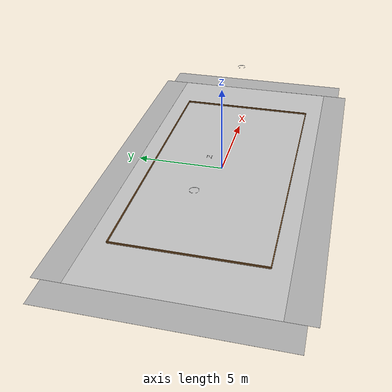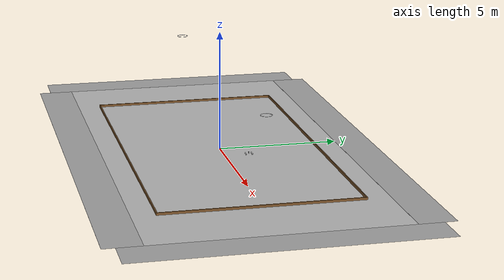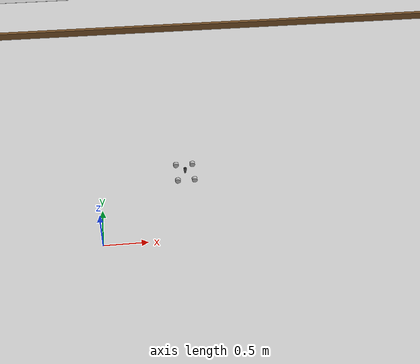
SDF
<sdf version="1.7">
 <world name="default_world">
  <model name="RoboCon25_Field">
   <static>1</static>
   <link name="chassis">
    <pose>0 0 0.01 0 -0 0</pose>
    <collision name="collision">
     <geometry><plane><normal>0 0 1</normal><size>22.5 11.5</size></plane></geometry>
     <surface>
      <friction><ode><mu>100</mu><mu2>50</mu2></ode></friction>
      <bounce><restitution_coefficient>0.75</restitution_coefficient><threshold>0.1</threshold></bounce>
     </surface>
    </collision>
    <visual name="carpet">
     <cast_shadows>0</cast_shadows>
     <geometry><plane><normal>0 0 1</normal><size>22.7 11.7</size></plane></geometry>
     <material>
      <script>
       <uri>model://RoboCon25_Field/materials/scripts/robocon25_field.material</uri>
       <uri>model://RoboCon25_Field/materials/textures/carpet.jpg</uri>
       <name>RoboCon/Carpet</name>
      </script>
     </material>
    </visual>
    <visual name="fence1">
     <pose>0 4.025 0.05 0 -0 0</pose>
     <cast_shadows>0</cast_shadows>
     <geometry><box><size>15 0.05 0.1</size></box></geometry>
     <material>
      <ambient>0.4627 0.3137 0.1568 1</ambient>
      <diffuse>0.4627 0.3137 0.1568 1</diffuse>
      <specular>0.1 0.1 0.1 1</specular>
     </material>
    </visual>
    <collision name="collision_fence1">
     <pose>0 4.025 0.05 0 -0 0</pose>
     <geometry><box><size>15 0.05 0.1</size></box></geometry>
    </collision>
    <visual name="fence2">
     <pose>0 -4.025 0.05 0 -0 0</pose>
     <cast_shadows>0</cast_shadows>
     <geometry><box><size>15 0.05 0.1</size></box></geometry>
     <material>
      <ambient>0.4627 0.3137 0.1568 1</ambient>
      <diffuse>0.4627 0.3137 0.1568 1</diffuse>
      <specular>0.1 0.1 0.1 1</specular>
     </material>
    </visual>
    <collision name="collision_fence2">
     <pose>0 -4.025 0.05 0 -0 0</pose>
     <geometry><box><size>15 0.05 0.1</size></box></geometry>
    </collision>
    <visual name="fence3">
     <pose>-7.525 0 0.05 0 -0 0</pose>
     <cast_shadows>0</cast_shadows>
     <geometry><box><size>0.05 8.1 0.1</size></box></geometry>
     <material>
      <ambient>0.4627 0.3137 0.1568 1</ambient>
      <diffuse>0.4627 0.3137 0.1568 1</diffuse>
      <specular>0.1 0.1 0.1 1</specular>
     </material>
    </visual>
    <collision name="collision_fence3">
     <pose>-7.525 0 0.05 0 -0 0</pose>
     <geometry><box><size>0.05 8.1 0.1</size></box></geometry>
    </collision>
    <visual name="fence4">
     <pose>7.525 0 0.05 0 -0 0</pose>
     <cast_shadows>0</cast_shadows>
     <geometry><box><size>0.05 8.1 0.1</size></box></geometry>
     <material>
      <ambient>0.4627 0.3137 0.1568 1</ambient>
      <diffuse>0.4627 0.3137 0.1568 1</diffuse>
      <specular>0.1 0.1 0.1 1</specular>
     </material>
    </visual>
    <collision name="collision_fence4">
     <pose>7.525 0 0.05 0 -0 0</pose>
     <geometry><box><size>0.05 8.1 0.1</size></box></geometry>
    </collision>
    <visual name="base1">
     <pose>0 5.75 0.01 0 -0 0</pose>
     <cast_shadows>0</cast_shadows>
     <geometry><plane><normal>0 0 1</normal><size>21 1.5</size></plane></geometry>
     <material>
      <script>
       <uri>model://RoboCon25_Field/materials/scripts/robocon25_field.material</uri>
       <uri>model://RoboCon25_Field/materials/textures/carpet.jpg</uri>
       <name>RoboCon/FieldBorder</name>
      </script>
     </material>
    </visual>
    <visual name="base2">
     <pose>0 -5.75 0.01 0 -0 0</pose>
     <cast_shadows>0</cast_shadows>
     <geometry><plane><normal>0 0 1</normal><size>21 1.5</size></plane></geometry>
     <material>
      <script>
       <uri>model://RoboCon25_Field/materials/scripts/robocon25_field.material</uri>
       <uri>model://RoboCon25_Field/materials/textures/carpet.jpg</uri>
       <name>RoboCon/FieldBorder</name>
      </script>
     </material>
    </visual>
    <visual name="base3">
     <pose>11.25 0 0.01 0 -0 0</pose>
     <cast_shadows>0</cast_shadows>
     <geometry><plane><normal>0 0 1</normal><size>1.5 12</size></plane></geometry>
     <material>
      <script>
       <uri>model://RoboCon25_Field/materials/scripts/robocon25_field.material</uri>
       <uri>model://RoboCon25_Field/materials/textures/carpet.jpg</uri>
       <name>RoboCon/FieldBorder</name>
      </script>
     </material>
    </visual>
    <visual name="base4">
     <pose>-11.25 0 0.01 0 -0 0</pose>
     <cast_shadows>0</cast_shadows>
     <geometry><plane><normal>0 0 1</normal><size>1.5 12</size></plane></geometry>
     <material>
      <script>
       <uri>model://RoboCon25_Field/materials/scripts/robocon25_field.material</uri>
       <uri>model://RoboCon25_Field/materials/textures/carpet.jpg</uri>
       <name>RoboCon/FieldBorder</name>
      </script>
     </material>
    </visual>
   </link>
   <model name="basketball_hoop1">
    <static>1</static>
    <link name="link">
     <pose>6.2 -0.9 0 0 -0 0</pose>
     <visual name="visual"><geometry><mesh><uri>model://hoop1/model.dae</uri></mesh></geometry></visual>
     <collision name="collision_backboard">
      <pose>0.6 0.93 3.35 0 -0 0</pose>
      <geometry><box><size>0.02 1.8 1.05</size></box></geometry>
     </collision>
     <collision name="collision_hoop">
      <pose>0.24 0.71 3.03 0 -0 0</pose>
      <geometry><mesh><uri>model://hoopC/model.dae</uri><scale>1.57 1.57 1.57</scale></mesh></geometry>
     </collision>
    </link>
   </model>
   <model name="basketball_hoop2">
    <static>1</static>
    <link name="link">
     <pose>-6.2 0.9 0 0 -0 3.14159</pose>
     <visual name="visual"><geometry><mesh><uri>model://hoop2/model.dae</uri></mesh></geometry></visual>
     <collision name="collision_backboard">
      <pose>0.6 0.93 3.35 0 -0 0</pose>
      <geometry><box><size>0.02 1.8 1.05</size></box></geometry>
     </collision>
     <collision name="collision_hoop">
      <pose>0.24 0.71 3.03 0 -0 0</pose>
      <geometry><mesh><uri>model://hoopC/model.dae</uri><scale>1.57 1.57 1.57</scale></mesh></geometry>
     </collision>
    </link>
   </model>
  </model>
  <scene><ambient>0.4 0.4 0.4 1</ambient><background>0.8 0.8 0.8 1</background><shadows>1</shadows></scene>
  <light name="sun" type="directional">
   <diffuse>0.8 0.8 0.8 1</diffuse>
   <specular>0.2 0.2 0.2 1</specular>
   <attenuation>
    <range>1000</range>
    <constant>0.9</constant>
    <linear>0.01</linear>
    <quadratic>0.001</quadratic>
   </attenuation>
   <direction>-0.5 0.1 -0.9</direction>
   <spot><inner_angle>0</inner_angle><outer_angle>0</outer_angle><falloff>0</falloff></spot>
  </light>
  <gravity>0 0 -9.8</gravity>
  <magnetic_field>6e-06 2.3e-05 -4.2e-05</magnetic_field>
  <atmosphere type="adiabatic"/>
  <physics type="ode">
   <max_step_size>0.001</max_step_size>
   <real_time_factor>1</real_time_factor>
   <real_time_update_rate>1000</real_time_update_rate>
  </physics>
  <audio><device>default</device></audio>
  <spherical_coordinates>
   <surface_model>EARTH_WGS84</surface_model>
   <latitude_deg>0</latitude_deg>
   <longitude_deg>0</longitude_deg>
   <elevation>0</elevation>
   <heading_deg>0</heading_deg>
  </spherical_coordinates>
  <model name="my_robot">
   <link name="dummy">
    <inertial>
     <pose>1 1 0.020601 0 -0 0</pose>
     <mass>8.32</mass>
     <inertia>
      <ixx>0.0102615</ixx>
      <ixy>0</ixy>
      <ixz>0</ixz>
      <iyy>0.0102615</iyy>
      <iyz>0</iyz>
      <izz>0.010021</izz>
     </inertia>
    </inertial>
    <collision name="dummy_fixed_joint_lump__base_link_collision">
     <pose>1 1 0.07 0 -0 1.5708</pose>
     <geometry><box><size>0.02 0.02 0.02</size></box></geometry>
    </collision>
    <collision name="dummy_fixed_joint_lump__laser_cylinder_link_collision_1">
     <pose>1 1 0.02 0 -0 0</pose>
     <geometry><cylinder><length>0.02</length><radius>0.01</radius></cylinder></geometry>
    </collision>
    <collision name="dummy_fixed_joint_lump__laser_link_collision_2">
     <pose>1 1 0.07 0 -0 0</pose>
     <geometry><cylinder><length>0.02</length><radius>0.02</radius></cylinder></geometry>
    </collision>
    <visual name="dummy_fixed_joint_lump__base_link_visual">
     <pose>1 1 0.07 0 -0 1.5708</pose>
     <geometry><box><size>0.02 0.02 0.02</size></box></geometry>
     <material>
      <script><name>Gazebo/Orange</name><uri>file://media/materials/scripts/gazebo.material</uri></script>
     </material>
    </visual>
    <visual name="dummy_fixed_joint_lump__laser_cylinder_link_visual_1">
     <pose>1 1 0.02 0 -0 0</pose>
     <geometry><cylinder><length>0.02</length><radius>0.01</radius></cylinder></geometry>
     <material>
      <script><name>Gazebo/Black</name><uri>file://media/materials/scripts/gazebo.material</uri></script>
     </material>
    </visual>
    <visual name="dummy_fixed_joint_lump__laser_link_visual_2">
     <pose>1 1 0.07 0 -0 0</pose>
     <geometry><cylinder><length>0.02</length><radius>0.02</radius></cylinder></geometry>
     <material>
      <script><name>Gazebo/Black</name><uri>file://media/materials/scripts/gazebo.material</uri></script>
     </material>
    </visual>
    <sensor name="laserscan" type="ray">
     <plugin name="laserscan" filename="libgazebo_ros_ray_sensor.so">
      <ros><namespace>/</namespace><remapping>~/out:=scan</remapping></ros>
      <output_type>sensor_msgs/LaserScan</output_type>
      <frame_name>laser_link</frame_name>
     </plugin>
     <always_on>1</always_on>
     <visualize>1</visualize>
     <update_rate>5</update_rate>
     <ray>
      <scan>
       <horizontal>
        <samples>360</samples>
        <resolution>1</resolution>
        <min_angle>0</min_angle>
        <max_angle>6.28</max_angle>
       </horizontal>
       <vertical><samples>1</samples><min_angle>0</min_angle><max_angle>0</max_angle></vertical>
      </scan>
      <range><min>0.12</min><max>8</max><resolution>0.015</resolution></range>
      <noise><type>gaussian</type><mean>0</mean><stddev>0.01</stddev></noise>
     </ray>
     <pose>1 1 0.07 0 -0 0</pose>
    </sensor>
   </link>
   <joint name="wheel_1_joint" type="revolute">
    <pose relative_to="dummy">1.1 1.13 0.02 0 -0 0</pose>
    <parent>dummy</parent>
    <child>wheel_1_link</child>
    <axis>
     <xyz>0 1 0</xyz>
     <limit><lower>-1e+16</lower><upper>1e+16</upper></limit>
     <dynamics><spring_reference>0</spring_reference><spring_stiffness>0</spring_stiffness></dynamics>
    </axis>
   </joint>
   <link name="wheel_1_link">
    <pose relative_to="wheel_1_joint">0 0 0 0 -0 0</pose>
    <inertial>
     <mass>0.5</mass>
     <inertia>
      <ixx>0.000194667</ixx>
      <ixy>0</ixy>
      <ixz>0</ixz>
      <iyy>0.000194667</iyy>
      <iyz>0</iyz>
      <izz>0.000256</izz>
     </inertia>
    </inertial>
    <collision name="wheel_1_link_collision">
     <pose>0 0 0 1.57079 -0 0</pose>
     <geometry><cylinder><length>0.04</length><radius>0.032</radius></cylinder></geometry>
    </collision>
    <visual name="wheel_1_link_visual">
     <pose>0 0 0 1.57079 -0 0</pose>
     <geometry><cylinder><length>0.04</length><radius>0.032</radius></cylinder></geometry>
    </visual>
   </link>
   <joint name="wheel_2_joint" type="revolute">
    <pose relative_to="dummy">0.9 1.13 0.02 0 -0 0</pose>
    <parent>dummy</parent>
    <child>wheel_2_link</child>
    <axis>
     <xyz>0 1 0</xyz>
     <limit><lower>-1e+16</lower><upper>1e+16</upper></limit>
     <dynamics><spring_reference>0</spring_reference><spring_stiffness>0</spring_stiffness></dynamics>
    </axis>
   </joint>
   <link name="wheel_2_link">
    <pose relative_to="wheel_2_joint">0 0 0 0 -0 0</pose>
    <inertial>
     <mass>0.5</mass>
     <inertia>
      <ixx>0.000194667</ixx>
      <ixy>0</ixy>
      <ixz>0</ixz>
      <iyy>0.000194667</iyy>
      <iyz>0</iyz>
      <izz>0.000256</izz>
     </inertia>
    </inertial>
    <collision name="wheel_2_link_collision">
     <pose>0 0 0 1.57079 -0 0</pose>
     <geometry><cylinder><length>0.04</length><radius>0.032</radius></cylinder></geometry>
    </collision>
    <visual name="wheel_2_link_visual">
     <pose>0 0 0 1.57079 -0 0</pose>
     <geometry><cylinder><length>0.04</length><radius>0.032</radius></cylinder></geometry>
    </visual>
   </link>
   <joint name="wheel_3_joint" type="revolute">
    <pose relative_to="dummy">1.1 0.87 0.02 0 -0 0</pose>
    <parent>dummy</parent>
    <child>wheel_3_link</child>
    <axis>
     <xyz>0 1 0</xyz>
     <limit><lower>-1e+16</lower><upper>1e+16</upper></limit>
     <dynamics><spring_reference>0</spring_reference><spring_stiffness>0</spring_stiffness></dynamics>
    </axis>
   </joint>
   <link name="wheel_3_link">
    <pose relative_to="wheel_3_joint">0 0 0 0 -0 0</pose>
    <inertial>
     <mass>0.5</mass>
     <inertia>
      <ixx>0.000194667</ixx>
      <ixy>0</ixy>
      <ixz>0</ixz>
      <iyy>0.000194667</iyy>
      <iyz>0</iyz>
      <izz>0.000256</izz>
     </inertia>
    </inertial>
    <collision name="wheel_3_link_collision">
     <pose>0 0 0 1.57079 -0 0</pose>
     <geometry><cylinder><length>0.04</length><radius>0.032</radius></cylinder></geometry>
    </collision>
    <visual name="wheel_3_link_visual">
     <pose>0 0 0 1.57079 -0 0</pose>
     <geometry><cylinder><length>0.04</length><radius>0.032</radius></cylinder></geometry>
    </visual>
   </link>
   <joint name="wheel_4_joint" type="revolute">
    <pose relative_to="dummy">0.9 0.87 0.02 0 -0 0</pose>
    <parent>dummy</parent>
    <child>wheel_4_link</child>
    <axis>
     <xyz>0 1 0</xyz>
     <limit><lower>-1e+16</lower><upper>1e+16</upper></limit>
     <dynamics><spring_reference>0</spring_reference><spring_stiffness>0</spring_stiffness></dynamics>
    </axis>
   </joint>
   <link name="wheel_4_link">
    <pose relative_to="wheel_4_joint">0 0 0 0 -0 0</pose>
    <inertial>
     <mass>0.5</mass>
     <inertia>
      <ixx>0.000194667</ixx>
      <ixy>0</ixy>
      <ixz>0</ixz>
      <iyy>0.000194667</iyy>
      <iyz>0</iyz>
      <izz>0.000256</izz>
     </inertia>
    </inertial>
    <collision name="wheel_4_link_collision">
     <pose>0 0 0 1.57079 -0 0</pose>
     <geometry><cylinder><length>0.04</length><radius>0.032</radius></cylinder></geometry>
    </collision>
    <visual name="wheel_4_link_visual">
     <pose>0 0 0 1.57079 -0 0</pose>
     <geometry><cylinder><length>0.04</length><radius>0.032</radius></cylinder></geometry>
    </visual>
   </link>
   <static>0</static>
   <plugin name="mecanum_controller" filename="libgazebo_ros_planar_move.so">
    <ros>
     <namespace>/</namespace>
     <remapping>cmd_vel:=cmd_vel_chassis</remapping>
     <remapping>odom:=odom</remapping>
    </ros>
    <update_rate>100</update_rate>
    <publish_rate>10</publish_rate>
    <publish_odom>0</publish_odom>
    <publish_odom_tf>0</publish_odom_tf>
    <odometry_frame>odom</odometry_frame>
    <robot_base_frame>base_link</robot_base_frame>
    <covariance_x>0.0001</covariance_x>
    <covariance_y>0.0001</covariance_y>
    <covariance_yaw>0.01</covariance_yaw>
   </plugin>
   <pose>0.004375 -0.00439 0.022 1e-06 1e-06 0.004377</pose>
  </model>
 </world>
</sdf>
